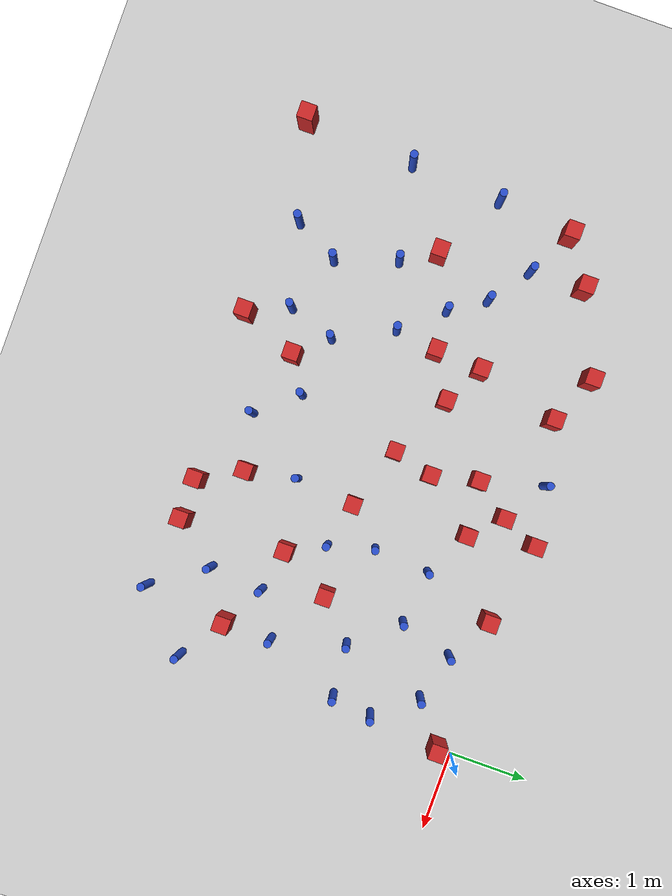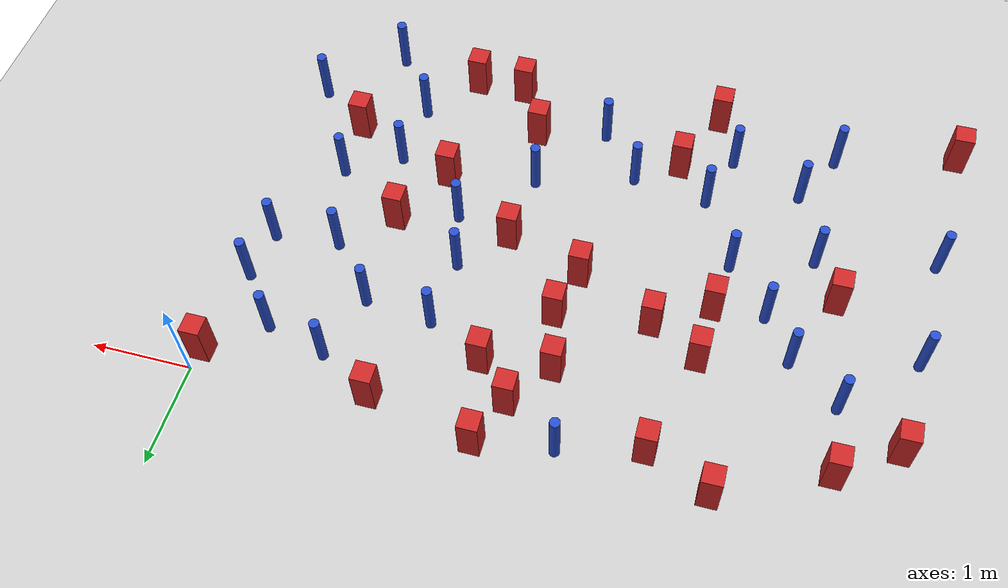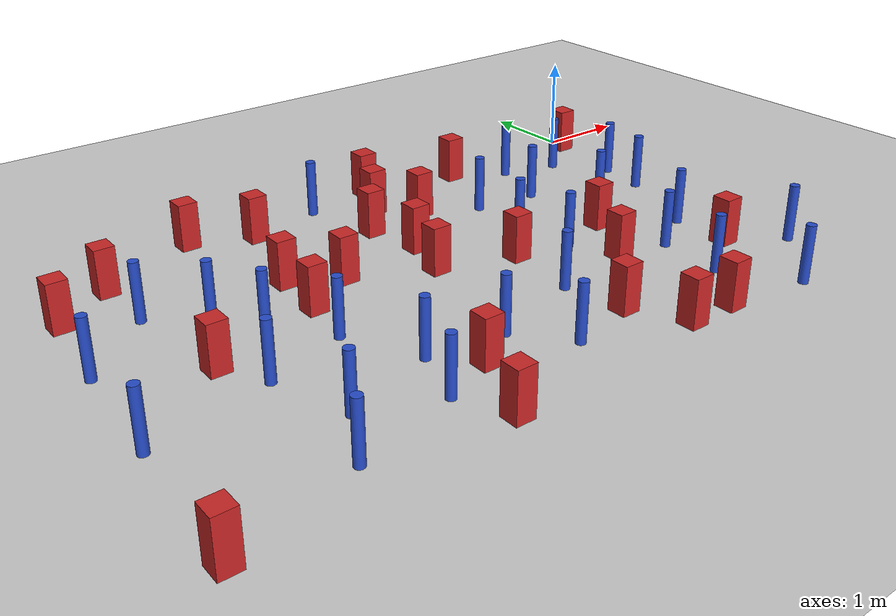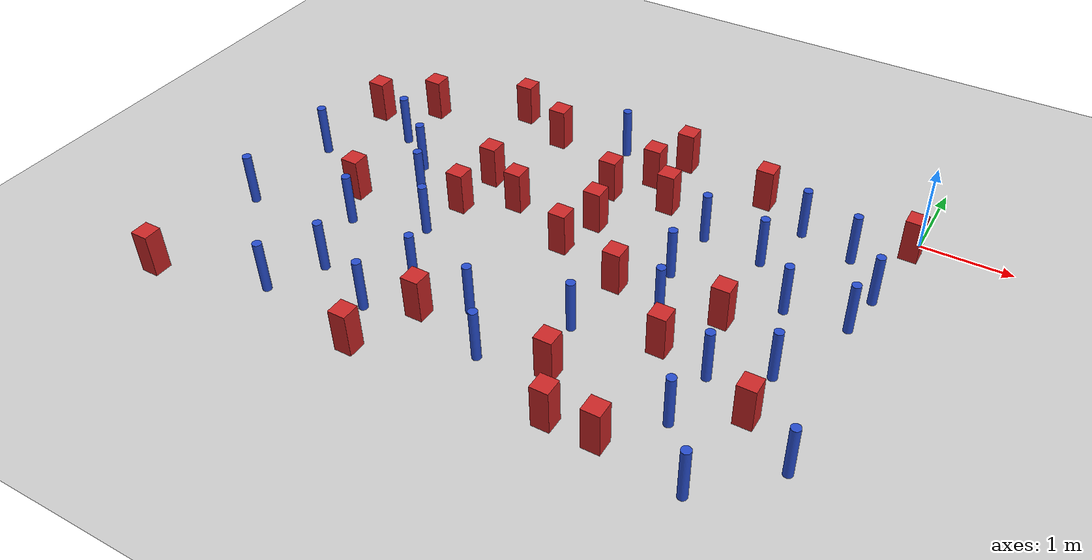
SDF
<sdf version="1.6">
 <world name="default">
  <model name="ground_plane">
   <static>1</static>
   <link name="link">
    <collision name="collision">
     <geometry><plane><normal>0 0 1</normal><size>100 100</size></plane></geometry>
     <surface><friction><ode><mu>100</mu><mu2>50</mu2></ode></friction></surface>
    </collision>
    <visual name="visual">
     <cast_shadows>0</cast_shadows>
     <geometry><plane><normal>0 0 1</normal><size>100 100</size></plane></geometry>
     <material>
      <ambient>1.0 1.0 1.0 1.0</ambient>
      <diffuse>0.8 0.8 0.8 1.0</diffuse>
      <specular>0.01 0.01 0.01 1.000000</specular>
     </material>
    </visual>
   </link>
  </model>
  <model name="NamedLocations">
   <static>true</static>
   <link name="DefaultStart"><pose>8.5 0 0 0 0 3.14</pose></link>
  </model>
  <model name="pole_obstacle3">
   <static>true</static>
   <pose>-0.15549464812 -1.1225898299 -9.47619616065e-06 5.49618799737e-07 2.36310414067e-07 -1.55090534796e-07</pose>
   <link name="link">
    <pose>0 0 0.3 0 -0 0</pose>
    <inertial>
     <mass>1</mass>
     <inertia><ixx>0.145833</ixx><ixy>0</ixy><ixz>0</ixz><iyy>0.145833</iyy><iyz>0</iyz><izz>0.125</izz></inertia>
    </inertial>
    <collision name="collision">
     <geometry><cylinder><radius>0.05</radius><length>.6</length></cylinder></geometry>
    </collision>
    <visual name="visual">
     <geometry><cylinder><radius>0.05</radius><length>.6</length></cylinder></geometry>
     <material>
      <script><name>Gazebo/Blue</name><uri>file://media/materials/scripts/gazebo.material</uri></script>
     </material>
    </visual>
   </link>
  </model>
  <model name="square_post_obstacle4">
   <static>true</static>
   <pose>-6.01725565641 -0.414345068226 -6.11067671241e-07 -5.50515727128e-06 -8.79689657224e-07 2.37013304536e-05</pose>
   <link name="link">
    <pose>0 0 0.25 0 -0 0</pose>
    <inertial>
     <mass>100</mass>
     <inertia>
      <ixx>0.166667</ixx>
      <ixy>0</ixy>
      <ixz>0</ixz>
      <iyy>0.166667</iyy>
      <iyz>0</iyz>
      <izz>0.166667</izz>
     </inertia>
    </inertial>
    <collision name="collision"><geometry><box><size>.2 .2 .5</size></box></geometry></collision>
    <visual name="visual">
     <geometry><box><size>.2 .2 .5</size></box></geometry>
     <material>
      <script><name>Gazebo/Red</name><uri>file://media/materials/scripts/gazebo.material</uri></script>
     </material>
    </visual>
   </link>
  </model>
  <model name="square_post_obstacle6">
   <static>true</static>
   <pose>-2.53700611456 -2.19720525429 -6.11067671241e-07 -5.50515727128e-06 -8.79689657224e-07 2.37013304536e-05</pose>
   <link name="link">
    <pose>0 0 0.25 0 -0 0</pose>
    <inertial>
     <mass>100</mass>
     <inertia>
      <ixx>0.166667</ixx>
      <ixy>0</ixy>
      <ixz>0</ixz>
      <iyy>0.166667</iyy>
      <iyz>0</iyz>
      <izz>0.166667</izz>
     </inertia>
    </inertial>
    <collision name="collision"><geometry><box><size>.2 .2 .5</size></box></geometry></collision>
    <visual name="visual">
     <geometry><box><size>.2 .2 .5</size></box></geometry>
     <material>
      <script><name>Gazebo/Red</name><uri>file://media/materials/scripts/gazebo.material</uri></script>
     </material>
    </visual>
   </link>
  </model>
  <model name="square_post_obstacle11">
   <static>true</static>
   <pose>-2.65082815415 -0.750428980162 -6.11067671241e-07 -5.50515727128e-06 -8.79689657224e-07 2.37013304536e-05</pose>
   <link name="link">
    <pose>0 0 0.25 0 -0 0</pose>
    <inertial>
     <mass>100</mass>
     <inertia>
      <ixx>0.166667</ixx>
      <ixy>0</ixy>
      <ixz>0</ixz>
      <iyy>0.166667</iyy>
      <iyz>0</iyz>
      <izz>0.166667</izz>
     </inertia>
    </inertial>
    <collision name="collision"><geometry><box><size>.2 .2 .5</size></box></geometry></collision>
    <visual name="visual">
     <geometry><box><size>.2 .2 .5</size></box></geometry>
     <material>
      <script><name>Gazebo/Red</name><uri>file://media/materials/scripts/gazebo.material</uri></script>
     </material>
    </visual>
   </link>
  </model>
  <model name="square_post_obstacle12">
   <static>true</static>
   <pose>-2.48388535579 -3.58912054183 -6.11067671241e-07 -5.50515727128e-06 -8.79689657224e-07 2.37013304536e-05</pose>
   <link name="link">
    <pose>0 0 0.25 0 -0 0</pose>
    <inertial>
     <mass>100</mass>
     <inertia>
      <ixx>0.166667</ixx>
      <ixy>0</ixy>
      <ixz>0</ixz>
      <iyy>0.166667</iyy>
      <iyz>0</iyz>
      <izz>0.166667</izz>
     </inertia>
    </inertial>
    <collision name="collision"><geometry><box><size>.2 .2 .5</size></box></geometry></collision>
    <visual name="visual">
     <geometry><box><size>.2 .2 .5</size></box></geometry>
     <material>
      <script><name>Gazebo/Red</name><uri>file://media/materials/scripts/gazebo.material</uri></script>
     </material>
    </visual>
   </link>
  </model>
  <model name="pole_obstacle9">
   <static>true</static>
   <pose>-2.60821976817 -2.95990756869 -9.47619616065e-06 5.49618799737e-07 2.36310414051e-07 -1.55090534807e-07</pose>
   <link name="link">
    <pose>0 0 0.3 0 -0 0</pose>
    <inertial>
     <mass>1</mass>
     <inertia><ixx>0.145833</ixx><ixy>0</ixy><ixz>0</ixz><iyy>0.145833</iyy><iyz>0</iyz><izz>0.125</izz></inertia>
    </inertial>
    <collision name="collision">
     <geometry><cylinder><radius>0.05</radius><length>.6</length></cylinder></geometry>
    </collision>
    <visual name="visual">
     <geometry><cylinder><radius>0.05</radius><length>.6</length></cylinder></geometry>
     <material>
      <script><name>Gazebo/Blue</name><uri>file://media/materials/scripts/gazebo.material</uri></script>
     </material>
    </visual>
   </link>
  </model>
  <model name="pole_obstacle11">
   <static>true</static>
   <pose>-3.18876839636 -3.75957769436 -9.47619616065e-06 5.49618799737e-07 2.36310414051e-07 -1.55090534807e-07</pose>
   <link name="link">
    <pose>0 0 0.3 0 -0 0</pose>
    <inertial>
     <mass>1</mass>
     <inertia><ixx>0.145833</ixx><ixy>0</ixy><ixz>0</ixz><iyy>0.145833</iyy><iyz>0</iyz><izz>0.125</izz></inertia>
    </inertial>
    <collision name="collision">
     <geometry><cylinder><radius>0.05</radius><length>.6</length></cylinder></geometry>
    </collision>
    <visual name="visual">
     <geometry><cylinder><radius>0.05</radius><length>.6</length></cylinder></geometry>
     <material>
      <script><name>Gazebo/Blue</name><uri>file://media/materials/scripts/gazebo.material</uri></script>
     </material>
    </visual>
   </link>
  </model>
  <model name="pole_obstacle16">
   <static>true</static>
   <pose>-0.883943718322 -1.69384752411 -9.47619616065e-06 5.49618799738e-07 2.36310414061e-07 -1.55090534801e-07</pose>
   <link name="link">
    <pose>0 0 0.3 0 -0 0</pose>
    <inertial>
     <mass>1</mass>
     <inertia><ixx>0.145833</ixx><ixy>0</ixy><ixz>0</ixz><iyy>0.145833</iyy><iyz>0</iyz><izz>0.125</izz></inertia>
    </inertial>
    <collision name="collision">
     <geometry><cylinder><radius>0.05</radius><length>.6</length></cylinder></geometry>
    </collision>
    <visual name="visual">
     <geometry><cylinder><radius>0.05</radius><length>.6</length></cylinder></geometry>
     <material>
      <script><name>Gazebo/Blue</name><uri>file://media/materials/scripts/gazebo.material</uri></script>
     </material>
    </visual>
   </link>
  </model>
  <model name="pole_obstacle26">
   <static>true</static>
   <pose>-1.1735871492 -0.448895654991 -9.47619616065e-06 5.49618799737e-07 2.36310414064e-07 -1.55090534799e-07</pose>
   <link name="link">
    <pose>0 0 0.3 0 -0 0</pose>
    <inertial>
     <mass>1</mass>
     <inertia><ixx>0.145833</ixx><ixy>0</ixy><ixz>0</ixz><iyy>0.145833</iyy><iyz>0</iyz><izz>0.125</izz></inertia>
    </inertial>
    <collision name="collision">
     <geometry><cylinder><radius>0.05</radius><length>.6</length></cylinder></geometry>
    </collision>
    <visual name="visual">
     <geometry><cylinder><radius>0.05</radius><length>.6</length></cylinder></geometry>
     <material>
      <script><name>Gazebo/Blue</name><uri>file://media/materials/scripts/gazebo.material</uri></script>
     </material>
    </visual>
   </link>
  </model>
  <model name="pole_obstacle32">
   <static>true</static>
   <pose>-0.0679648866142 -3.59554564713 -9.47619616065e-06 5.49618799737e-07 2.36310414062e-07 -1.55090534799e-07</pose>
   <link name="link">
    <pose>0 0 0.3 0 -0 0</pose>
    <inertial>
     <mass>1</mass>
     <inertia><ixx>0.145833</ixx><ixy>0</ixy><ixz>0</ixz><iyy>0.145833</iyy><iyz>0</iyz><izz>0.125</izz></inertia>
    </inertial>
    <collision name="collision">
     <geometry><cylinder><radius>0.05</radius><length>.6</length></cylinder></geometry>
    </collision>
    <visual name="visual">
     <geometry><cylinder><radius>0.05</radius><length>.6</length></cylinder></geometry>
     <material>
      <script><name>Gazebo/Blue</name><uri>file://media/materials/scripts/gazebo.material</uri></script>
     </material>
    </visual>
   </link>
  </model>
  <model name="pole_obstacle37">
   <static>true</static>
   <pose>-0.751585349839 -4.26400418196 -9.47619616065e-06 5.49618799737e-07 2.36310414065e-07 -1.55090534796e-07</pose>
   <link name="link">
    <pose>0 0 0.3 0 -0 0</pose>
    <inertial>
     <mass>1</mass>
     <inertia><ixx>0.145833</ixx><ixy>0</ixy><ixz>0</ixz><iyy>0.145833</iyy><iyz>0</iyz><izz>0.125</izz></inertia>
    </inertial>
    <collision name="collision">
     <geometry><cylinder><radius>0.05</radius><length>.6</length></cylinder></geometry>
    </collision>
    <visual name="visual">
     <geometry><cylinder><radius>0.05</radius><length>.6</length></cylinder></geometry>
     <material>
      <script><name>Gazebo/Blue</name><uri>file://media/materials/scripts/gazebo.material</uri></script>
     </material>
    </visual>
   </link>
  </model>
  <model name="pole_obstacle41">
   <static>true</static>
   <pose>-4.75455141034 -2.41910875426 -9.47619616065e-06 5.49618799738e-07 2.36310414051e-07 -1.55090534805e-07</pose>
   <link name="link">
    <pose>0 0 0.3 0 -0 0</pose>
    <inertial>
     <mass>1</mass>
     <inertia><ixx>0.145833</ixx><ixy>0</ixy><ixz>0</ixz><iyy>0.145833</iyy><iyz>0</iyz><izz>0.125</izz></inertia>
    </inertial>
    <collision name="collision">
     <geometry><cylinder><radius>0.05</radius><length>.6</length></cylinder></geometry>
    </collision>
    <visual name="visual">
     <geometry><cylinder><radius>0.05</radius><length>.6</length></cylinder></geometry>
     <material>
      <script><name>Gazebo/Blue</name><uri>file://media/materials/scripts/gazebo.material</uri></script>
     </material>
    </visual>
   </link>
  </model>
  <model name="pole_obstacle42">
   <static>true</static>
   <pose>-5.57264430851 -2.67848662907 -9.47619616065e-06 5.49618799738e-07 2.36310414051e-07 -1.55090534805e-07</pose>
   <link name="link">
    <pose>0 0 0.3 0 -0 0</pose>
    <inertial>
     <mass>1</mass>
     <inertia><ixx>0.145833</ixx><ixy>0</ixy><ixz>0</ixz><iyy>0.145833</iyy><iyz>0</iyz><izz>0.125</izz></inertia>
    </inertial>
    <collision name="collision">
     <geometry><cylinder><radius>0.05</radius><length>.6</length></cylinder></geometry>
    </collision>
    <visual name="visual">
     <geometry><cylinder><radius>0.05</radius><length>.6</length></cylinder></geometry>
     <material>
      <script><name>Gazebo/Blue</name><uri>file://media/materials/scripts/gazebo.material</uri></script>
     </material>
    </visual>
   </link>
  </model>
  <model name="pole_obstacle45">
   <static>true</static>
   <pose>-4.38309300057 -3.14928430452 -9.47619616065e-06 5.49618799738e-07 2.36310414051e-07 -1.55090534805e-07</pose>
   <link name="link">
    <pose>0 0 0.3 0 -0 0</pose>
    <inertial>
     <mass>1</mass>
     <inertia><ixx>0.145833</ixx><ixy>0</ixy><ixz>0</ixz><iyy>0.145833</iyy><iyz>0</iyz><izz>0.125</izz></inertia>
    </inertial>
    <collision name="collision">
     <geometry><cylinder><radius>0.05</radius><length>.6</length></cylinder></geometry>
    </collision>
    <visual name="visual">
     <geometry><cylinder><radius>0.05</radius><length>.6</length></cylinder></geometry>
     <material>
      <script><name>Gazebo/Blue</name><uri>file://media/materials/scripts/gazebo.material</uri></script>
     </material>
    </visual>
   </link>
  </model>
  <model name="pole_obstacle49">
   <static>true</static>
   <pose>-4.57653261212 -3.73852436423 -9.47619616065e-06 5.49618799738e-07 2.36310414051e-07 -1.55090534805e-07</pose>
   <link name="link">
    <pose>0 0 0.3 0 -0 0</pose>
    <inertial>
     <mass>1</mass>
     <inertia><ixx>0.145833</ixx><ixy>0</ixy><ixz>0</ixz><iyy>0.145833</iyy><iyz>0</iyz><izz>0.125</izz></inertia>
    </inertial>
    <collision name="collision">
     <geometry><cylinder><radius>0.05</radius><length>.6</length></cylinder></geometry>
    </collision>
    <visual name="visual">
     <geometry><cylinder><radius>0.05</radius><length>.6</length></cylinder></geometry>
     <material>
      <script><name>Gazebo/Blue</name><uri>file://media/materials/scripts/gazebo.material</uri></script>
     </material>
    </visual>
   </link>
  </model>
  <model name="square_post_obstacle50">
   <static>true</static>
   <pose>-4.98031181618 0.045488346718 -6.11067671241e-07 -5.50515727128e-06 -8.79689657224e-07 2.37013304536e-05</pose>
   <link name="link">
    <pose>0 0 0.25 0 -0 0</pose>
    <inertial>
     <mass>100</mass>
     <inertia>
      <ixx>0.166667</ixx>
      <ixy>0</ixy>
      <ixz>0</ixz>
      <iyy>0.166667</iyy>
      <iyz>0</iyz>
      <izz>0.166667</izz>
     </inertia>
    </inertial>
    <collision name="collision"><geometry><box><size>.2 .2 .5</size></box></geometry></collision>
    <visual name="visual">
     <geometry><box><size>.2 .2 .5</size></box></geometry>
     <material>
      <script><name>Gazebo/Red</name><uri>file://media/materials/scripts/gazebo.material</uri></script>
     </material>
    </visual>
   </link>
  </model>
  <model name="pole_obstacle51">
   <static>true</static>
   <pose>-6.75865745815 -2.92584401768 -9.47619616065e-06 5.49618799738e-07 2.36310414051e-07 -1.55090534805e-07</pose>
   <link name="link">
    <pose>0 0 0.3 0 -0 0</pose>
    <inertial>
     <mass>1</mass>
     <inertia><ixx>0.145833</ixx><ixy>0</ixy><ixz>0</ixz><iyy>0.145833</iyy><iyz>0</iyz><izz>0.125</izz></inertia>
    </inertial>
    <collision name="collision">
     <geometry><cylinder><radius>0.05</radius><length>.6</length></cylinder></geometry>
    </collision>
    <visual name="visual">
     <geometry><cylinder><radius>0.05</radius><length>.6</length></cylinder></geometry>
     <material>
      <script><name>Gazebo/Blue</name><uri>file://media/materials/scripts/gazebo.material</uri></script>
     </material>
    </visual>
   </link>
  </model>
  <model name="square_post_obstacle59">
   <static>true</static>
   <pose>-4.67248299402 -1.87569988797 -6.11067671241e-07 -5.50515727128e-06 -8.79689657224e-07 2.37013304536e-05</pose>
   <link name="link">
    <pose>0 0 0.25 0 -0 0</pose>
    <inertial>
     <mass>100</mass>
     <inertia>
      <ixx>0.166667</ixx>
      <ixy>0</ixy>
      <ixz>0</ixz>
      <iyy>0.166667</iyy>
      <iyz>0</iyz>
      <izz>0.166667</izz>
     </inertia>
    </inertial>
    <collision name="collision"><geometry><box><size>.2 .2 .5</size></box></geometry></collision>
    <visual name="visual">
     <geometry><box><size>.2 .2 .5</size></box></geometry>
     <material>
      <script><name>Gazebo/Red</name><uri>file://media/materials/scripts/gazebo.material</uri></script>
     </material>
    </visual>
   </link>
  </model>
  <model name="square_post_obstacle60">
   <static>true</static>
   <pose>-0.627127308561 -3.21232594551 -6.11067671241e-07 -5.50515727128e-06 -8.79689657224e-07 2.37013304536e-05</pose>
   <link name="link">
    <pose>0 0 0.25 0 -0 0</pose>
    <inertial>
     <mass>100</mass>
     <inertia>
      <ixx>0.166667</ixx>
      <ixy>0</ixy>
      <ixz>0</ixz>
      <iyy>0.166667</iyy>
      <iyz>0</iyz>
      <izz>0.166667</izz>
     </inertia>
    </inertial>
    <collision name="collision"><geometry><box><size>.2 .2 .5</size></box></geometry></collision>
    <visual name="visual">
     <geometry><box><size>.2 .2 .5</size></box></geometry>
     <material>
      <script><name>Gazebo/Red</name><uri>file://media/materials/scripts/gazebo.material</uri></script>
     </material>
    </visual>
   </link>
  </model>
  <model name="square_post_obstacle70">
   <static>true</static>
   <pose>-3.33537686443 -0.835675595506 -6.11067671241e-07 -5.50515727128e-06 -8.79689657224e-07 2.37013304536e-05</pose>
   <link name="link">
    <pose>0 0 0.25 0 -0 0</pose>
    <inertial>
     <mass>100</mass>
     <inertia>
      <ixx>0.166667</ixx>
      <ixy>0</ixy>
      <ixz>0</ixz>
      <iyy>0.166667</iyy>
      <iyz>0</iyz>
      <izz>0.166667</izz>
     </inertia>
    </inertial>
    <collision name="collision"><geometry><box><size>.2 .2 .5</size></box></geometry></collision>
    <visual name="visual">
     <geometry><box><size>.2 .2 .5</size></box></geometry>
     <material>
      <script><name>Gazebo/Red</name><uri>file://media/materials/scripts/gazebo.material</uri></script>
     </material>
    </visual>
   </link>
  </model>
  <model name="pole_obstacle69">
   <static>true</static>
   <pose>-3.55504314855 -0.0357356457118 -9.47619616065e-06 5.49618799738e-07 2.36310414077e-07 -1.55090534792e-07</pose>
   <link name="link">
    <pose>0 0 0.3 0 -0 0</pose>
    <inertial>
     <mass>1</mass>
     <inertia><ixx>0.145833</ixx><ixy>0</ixy><ixz>0</ixz><iyy>0.145833</iyy><iyz>0</iyz><izz>0.125</izz></inertia>
    </inertial>
    <collision name="collision">
     <geometry><cylinder><radius>0.05</radius><length>.6</length></cylinder></geometry>
    </collision>
    <visual name="visual">
     <geometry><cylinder><radius>0.05</radius><length>.6</length></cylinder></geometry>
     <material>
      <script><name>Gazebo/Blue</name><uri>file://media/materials/scripts/gazebo.material</uri></script>
     </material>
    </visual>
   </link>
  </model>
  <model name="pole_obstacle94">
   <static>true</static>
   <pose>-5.48154970537 -1.47457390394 -9.47619616065e-06 5.49618799738e-07 2.36310414071e-07 -1.55090534796e-07</pose>
   <link name="link">
    <pose>0 0 0.3 0 -0 0</pose>
    <inertial>
     <mass>1</mass>
     <inertia><ixx>0.145833</ixx><ixy>0</ixy><ixz>0</ixz><iyy>0.145833</iyy><iyz>0</iyz><izz>0.125</izz></inertia>
    </inertial>
    <collision name="collision">
     <geometry><cylinder><radius>0.05</radius><length>.6</length></cylinder></geometry>
    </collision>
    <visual name="visual">
     <geometry><cylinder><radius>0.05</radius><length>.6</length></cylinder></geometry>
     <material>
      <script><name>Gazebo/Blue</name><uri>file://media/materials/scripts/gazebo.material</uri></script>
     </material>
    </visual>
   </link>
  </model>
  <model name="square_post_obstacle83">
   <static>true</static>
   <pose>-1.74344827752 -0.135848268966 -6.11067671241e-07 -5.50515727128e-06 -8.79689657224e-07 2.37013304536e-05</pose>
   <link name="link">
    <pose>0 0 0.25 0 -0 0</pose>
    <inertial>
     <mass>100</mass>
     <inertia>
      <ixx>0.166667</ixx>
      <ixy>0</ixy>
      <ixz>0</ixz>
      <iyy>0.166667</iyy>
      <iyz>0</iyz>
      <izz>0.166667</izz>
     </inertia>
    </inertial>
    <collision name="collision"><geometry><box><size>.2 .2 .5</size></box></geometry></collision>
    <visual name="visual">
     <geometry><box><size>.2 .2 .5</size></box></geometry>
     <material>
      <script><name>Gazebo/Red</name><uri>file://media/materials/scripts/gazebo.material</uri></script>
     </material>
    </visual>
   </link>
  </model>
  <model name="square_post_obstacle85">
   <static>true</static>
   <pose>-4.35220517667 -0.224747397808 -6.11067671241e-07 -5.50515727128e-06 -8.79689657224e-07 2.37013304536e-05</pose>
   <link name="link">
    <pose>0 0 0.25 0 -0 0</pose>
    <inertial>
     <mass>100</mass>
     <inertia>
      <ixx>0.166667</ixx>
      <ixy>0</ixy>
      <ixz>0</ixz>
      <iyy>0.166667</iyy>
      <iyz>0</iyz>
      <izz>0.166667</izz>
     </inertia>
    </inertial>
    <collision name="collision"><geometry><box><size>.2 .2 .5</size></box></geometry></collision>
    <visual name="visual">
     <geometry><box><size>.2 .2 .5</size></box></geometry>
     <material>
      <script><name>Gazebo/Red</name><uri>file://media/materials/scripts/gazebo.material</uri></script>
     </material>
    </visual>
   </link>
  </model>
  <model name="pole_obstacle99">
   <static>true</static>
   <pose>-2.11475759452 -1.75734526215 -9.47619616065e-06 5.49618799737e-07 2.36310414072e-07 -1.55090534793e-07</pose>
   <link name="link">
    <pose>0 0 0.3 0 -0 0</pose>
    <inertial>
     <mass>1</mass>
     <inertia><ixx>0.145833</ixx><ixy>0</ixy><ixz>0</ixz><iyy>0.145833</iyy><iyz>0</iyz><izz>0.125</izz></inertia>
    </inertial>
    <collision name="collision">
     <geometry><cylinder><radius>0.05</radius><length>.6</length></cylinder></geometry>
    </collision>
    <visual name="visual">
     <geometry><cylinder><radius>0.05</radius><length>.6</length></cylinder></geometry>
     <material>
      <script><name>Gazebo/Blue</name><uri>file://media/materials/scripts/gazebo.material</uri></script>
     </material>
    </visual>
   </link>
  </model>
  <model name="square_post_obstacle89">
   <static>true</static>
   <pose>-4.03870317847 -3.52783765517 -6.11067671241e-07 -5.50515727128e-06 -8.79689657224e-07 2.37013304536e-05</pose>
   <link name="link">
    <pose>0 0 0.25 0 -0 0</pose>
    <inertial>
     <mass>100</mass>
     <inertia>
      <ixx>0.166667</ixx>
      <ixy>0</ixy>
      <ixz>0</ixz>
      <iyy>0.166667</iyy>
      <iyz>0</iyz>
      <izz>0.166667</izz>
     </inertia>
    </inertial>
    <collision name="collision"><geometry><box><size>.2 .2 .5</size></box></geometry></collision>
    <visual name="visual">
     <geometry><box><size>.2 .2 .5</size></box></geometry>
     <material>
      <script><name>Gazebo/Red</name><uri>file://media/materials/scripts/gazebo.material</uri></script>
     </material>
    </visual>
   </link>
  </model>
  <model name="pole_obstacle104">
   <static>true</static>
   <pose>-1.37579868778 -1.12550468454 -9.47619616065e-06 5.49618799737e-07 2.36310414065e-07 -1.55090534798e-07</pose>
   <link name="link">
    <pose>0 0 0.3 0 -0 0</pose>
    <inertial>
     <mass>1</mass>
     <inertia><ixx>0.145833</ixx><ixy>0</ixy><ixz>0</ixz><iyy>0.145833</iyy><iyz>0</iyz><izz>0.125</izz></inertia>
    </inertial>
    <collision name="collision">
     <geometry><cylinder><radius>0.05</radius><length>.6</length></cylinder></geometry>
    </collision>
    <visual name="visual">
     <geometry><cylinder><radius>0.05</radius><length>.6</length></cylinder></geometry>
     <material>
      <script><name>Gazebo/Blue</name><uri>file://media/materials/scripts/gazebo.material</uri></script>
     </material>
    </visual>
   </link>
  </model>
  <model name="pole_obstacle116">
   <static>true</static>
   <pose>-1.1635548479 -2.91327949173 -9.47619616065e-06 5.49618799737e-07 2.36310414062e-07 -1.55090534798e-07</pose>
   <link name="link">
    <pose>0 0 0.3 0 -0 0</pose>
    <inertial>
     <mass>1</mass>
     <inertia><ixx>0.145833</ixx><ixy>0</ixy><ixz>0</ixz><iyy>0.145833</iyy><iyz>0</iyz><izz>0.125</izz></inertia>
    </inertial>
    <collision name="collision">
     <geometry><cylinder><radius>0.05</radius><length>.6</length></cylinder></geometry>
    </collision>
    <visual name="visual">
     <geometry><cylinder><radius>0.05</radius><length>.6</length></cylinder></geometry>
     <material>
      <script><name>Gazebo/Blue</name><uri>file://media/materials/scripts/gazebo.material</uri></script>
     </material>
    </visual>
   </link>
  </model>
  <model name="square_post_obstacle108">
   <static>true</static>
   <pose>-1.66970450592 -4.1324618094 -6.11067671241e-07 -5.50515727128e-06 -8.79689657224e-07 2.37013304536e-05</pose>
   <link name="link">
    <pose>0 0 0.25 0 -0 0</pose>
    <inertial>
     <mass>100</mass>
     <inertia>
      <ixx>0.166667</ixx>
      <ixy>0</ixy>
      <ixz>0</ixz>
      <iyy>0.166667</iyy>
      <iyz>0</iyz>
      <izz>0.166667</izz>
     </inertia>
    </inertial>
    <collision name="collision"><geometry><box><size>.2 .2 .5</size></box></geometry></collision>
    <visual name="visual">
     <geometry><box><size>.2 .2 .5</size></box></geometry>
     <material>
      <script><name>Gazebo/Red</name><uri>file://media/materials/scripts/gazebo.material</uri></script>
     </material>
    </visual>
   </link>
  </model>
  <model name="pole_obstacle121">
   <static>true</static>
   <pose>-5.31171345723 -3.45143728901 -9.47619616065e-06 5.49618799738e-07 2.36310414051e-07 -1.55090534805e-07</pose>
   <link name="link">
    <pose>0 0 0.3 0 -0 0</pose>
    <inertial>
     <mass>1</mass>
     <inertia><ixx>0.145833</ixx><ixy>0</ixy><ixz>0</ixz><iyy>0.145833</iyy><iyz>0</iyz><izz>0.125</izz></inertia>
    </inertial>
    <collision name="collision">
     <geometry><cylinder><radius>0.05</radius><length>.6</length></cylinder></geometry>
    </collision>
    <visual name="visual">
     <geometry><cylinder><radius>0.05</radius><length>.6</length></cylinder></geometry>
     <material>
      <script><name>Gazebo/Blue</name><uri>file://media/materials/scripts/gazebo.material</uri></script>
     </material>
    </visual>
   </link>
  </model>
  <model name="pole_obstacle123">
   <static>true</static>
   <pose>-1.95697928194 -2.32937170766 -9.47619616065e-06 5.49618799737e-07 2.36310414076e-07 -1.55090534791e-07</pose>
   <link name="link">
    <pose>0 0 0.3 0 -0 0</pose>
    <inertial>
     <mass>1</mass>
     <inertia><ixx>0.145833</ixx><ixy>0</ixy><ixz>0</ixz><iyy>0.145833</iyy><iyz>0</iyz><izz>0.125</izz></inertia>
    </inertial>
    <collision name="collision">
     <geometry><cylinder><radius>0.05</radius><length>.6</length></cylinder></geometry>
    </collision>
    <visual name="visual">
     <geometry><cylinder><radius>0.05</radius><length>.6</length></cylinder></geometry>
     <material>
      <script><name>Gazebo/Blue</name><uri>file://media/materials/scripts/gazebo.material</uri></script>
     </material>
    </visual>
   </link>
  </model>
  <model name="pole_obstacle125">
   <static>true</static>
   <pose>-5.18692185516 -1.91348864505 -9.47619616065e-06 5.49618799738e-07 2.36310414071e-07 -1.55090534796e-07</pose>
   <link name="link">
    <pose>0 0 0.3 0 -0 0</pose>
    <inertial>
     <mass>1</mass>
     <inertia><ixx>0.145833</ixx><ixy>0</ixy><ixz>0</ixz><iyy>0.145833</iyy><iyz>0</iyz><izz>0.125</izz></inertia>
    </inertial>
    <collision name="collision">
     <geometry><cylinder><radius>0.05</radius><length>.6</length></cylinder></geometry>
    </collision>
    <visual name="visual">
     <geometry><cylinder><radius>0.05</radius><length>.6</length></cylinder></geometry>
     <material>
      <script><name>Gazebo/Blue</name><uri>file://media/materials/scripts/gazebo.material</uri></script>
     </material>
    </visual>
   </link>
  </model>
  <model name="pole_obstacle135">
   <static>true</static>
   <pose>-0.227210654788 -1.6357667809 -9.47619616065e-06 5.49618799738e-07 2.36310414065e-07 -1.55090534798e-07</pose>
   <link name="link">
    <pose>0 0 0.3 0 -0 0</pose>
    <inertial>
     <mass>1</mass>
     <inertia><ixx>0.145833</ixx><ixy>0</ixy><ixz>0</ixz><iyy>0.145833</iyy><iyz>0</iyz><izz>0.125</izz></inertia>
    </inertial>
    <collision name="collision">
     <geometry><cylinder><radius>0.05</radius><length>.6</length></cylinder></geometry>
    </collision>
    <visual name="visual">
     <geometry><cylinder><radius>0.05</radius><length>.6</length></cylinder></geometry>
     <material>
      <script><name>Gazebo/Blue</name><uri>file://media/materials/scripts/gazebo.material</uri></script>
     </material>
    </visual>
   </link>
  </model>
  <model name="square_post_obstacle116">
   <static>true</static>
   <pose>-4.13005670466 -1.54938681554 -6.11067671241e-07 -5.50515727128e-06 -8.79689657224e-07 2.37013304536e-05</pose>
   <link name="link">
    <pose>0 0 0.25 0 -0 0</pose>
    <inertial>
     <mass>100</mass>
     <inertia>
      <ixx>0.166667</ixx>
      <ixy>0</ixy>
      <ixz>0</ixz>
      <iyy>0.166667</iyy>
      <iyz>0</iyz>
      <izz>0.166667</izz>
     </inertia>
    </inertial>
    <collision name="collision"><geometry><box><size>.2 .2 .5</size></box></geometry></collision>
    <visual name="visual">
     <geometry><box><size>.2 .2 .5</size></box></geometry>
     <material>
      <script><name>Gazebo/Red</name><uri>file://media/materials/scripts/gazebo.material</uri></script>
     </material>
    </visual>
   </link>
  </model>
  <model name="square_post_obstacle119">
   <static>true</static>
   <pose>-0.0483378642414 -0.210063783202 -6.11067671241e-07 -5.50515727128e-06 -8.79689657224e-07 2.37013304536e-05</pose>
   <link name="link">
    <pose>0 0 0.25 0 -0 0</pose>
    <inertial>
     <mass>100</mass>
     <inertia>
      <ixx>0.166667</ixx>
      <ixy>0</ixy>
      <ixz>0</ixz>
      <iyy>0.166667</iyy>
      <iyz>0</iyz>
      <izz>0.166667</izz>
     </inertia>
    </inertial>
    <collision name="collision"><geometry><box><size>.2 .2 .5</size></box></geometry></collision>
    <visual name="visual">
     <geometry><box><size>.2 .2 .5</size></box></geometry>
     <material>
      <script><name>Gazebo/Red</name><uri>file://media/materials/scripts/gazebo.material</uri></script>
     </material>
    </visual>
   </link>
  </model>
  <model name="square_post_obstacle123">
   <static>true</static>
   <pose>-3.1997612624 -1.41937217034 -6.11067671241e-07 -5.50515727128e-06 -8.79689657224e-07 2.37013304536e-05</pose>
   <link name="link">
    <pose>0 0 0.25 0 -0 0</pose>
    <inertial>
     <mass>100</mass>
     <inertia>
      <ixx>0.166667</ixx>
      <ixy>0</ixy>
      <ixz>0</ixz>
      <iyy>0.166667</iyy>
      <iyz>0</iyz>
      <izz>0.166667</izz>
     </inertia>
    </inertial>
    <collision name="collision"><geometry><box><size>.2 .2 .5</size></box></geometry></collision>
    <visual name="visual">
     <geometry><box><size>.2 .2 .5</size></box></geometry>
     <material>
      <script><name>Gazebo/Red</name><uri>file://media/materials/scripts/gazebo.material</uri></script>
     </material>
    </visual>
   </link>
  </model>
  <model name="pole_obstacle140">
   <static>true</static>
   <pose>-0.624285704263 -2.59994410488 -9.47619616065e-06 5.49618799737e-07 2.36310414066e-07 -1.55090534797e-07</pose>
   <link name="link">
    <pose>0 0 0.3 0 -0 0</pose>
    <inertial>
     <mass>1</mass>
     <inertia><ixx>0.145833</ixx><ixy>0</ixy><ixz>0</ixz><iyy>0.145833</iyy><iyz>0</iyz><izz>0.125</izz></inertia>
    </inertial>
    <collision name="collision">
     <geometry><cylinder><radius>0.05</radius><length>.6</length></cylinder></geometry>
    </collision>
    <visual name="visual">
     <geometry><cylinder><radius>0.05</radius><length>.6</length></cylinder></geometry>
     <material>
      <script><name>Gazebo/Blue</name><uri>file://media/materials/scripts/gazebo.material</uri></script>
     </material>
    </visual>
   </link>
  </model>
  <model name="square_post_obstacle132">
   <static>true</static>
   <pose>-1.36321852122 -2.14388804077 -6.11067671241e-07 -5.50515727128e-06 -8.79689657224e-07 2.37013304536e-05</pose>
   <link name="link">
    <pose>0 0 0.25 0 -0 0</pose>
    <inertial>
     <mass>100</mass>
     <inertia>
      <ixx>0.166667</ixx>
      <ixy>0</ixy>
      <ixz>0</ixz>
      <iyy>0.166667</iyy>
      <iyz>0</iyz>
      <izz>0.166667</izz>
     </inertia>
    </inertial>
    <collision name="collision"><geometry><box><size>.2 .2 .5</size></box></geometry></collision>
    <visual name="visual">
     <geometry><box><size>.2 .2 .5</size></box></geometry>
     <material>
      <script><name>Gazebo/Red</name><uri>file://media/materials/scripts/gazebo.material</uri></script>
     </material>
    </visual>
   </link>
  </model>
  <model name="square_post_obstacle140">
   <static>true</static>
   <pose>-2.8084127421 0.079204917517 -6.11067671241e-07 -5.50515727128e-06 -8.79689657224e-07 2.37013304536e-05</pose>
   <link name="link">
    <pose>0 0 0.25 0 -0 0</pose>
    <inertial>
     <mass>100</mass>
     <inertia>
      <ixx>0.166667</ixx>
      <ixy>0</ixy>
      <ixz>0</ixz>
      <iyy>0.166667</iyy>
      <iyz>0</iyz>
      <izz>0.166667</izz>
     </inertia>
    </inertial>
    <collision name="collision"><geometry><box><size>.2 .2 .5</size></box></geometry></collision>
    <visual name="visual">
     <geometry><box><size>.2 .2 .5</size></box></geometry>
     <material>
      <script><name>Gazebo/Red</name><uri>file://media/materials/scripts/gazebo.material</uri></script>
     </material>
    </visual>
   </link>
  </model>
  <model name="pole_obstacle156">
   <static>true</static>
   <pose>-1.21711625201 -3.59710161756 -9.47619616065e-06 5.49618799737e-07 2.36310414062e-07 -1.55090534798e-07</pose>
   <link name="link">
    <pose>0 0 0.3 0 -0 0</pose>
    <inertial>
     <mass>1</mass>
     <inertia><ixx>0.145833</ixx><ixy>0</ixy><ixz>0</ixz><iyy>0.145833</iyy><iyz>0</iyz><izz>0.125</izz></inertia>
    </inertial>
    <collision name="collision">
     <geometry><cylinder><radius>0.05</radius><length>.6</length></cylinder></geometry>
    </collision>
    <visual name="visual">
     <geometry><cylinder><radius>0.05</radius><length>.6</length></cylinder></geometry>
     <material>
      <script><name>Gazebo/Blue</name><uri>file://media/materials/scripts/gazebo.material</uri></script>
     </material>
    </visual>
   </link>
  </model>
  <model name="square_post_obstacle150">
   <static>true</static>
   <pose>-6.84316545487 -4.33504790667 -6.11067671241e-07 -5.50515727128e-06 -8.79689657224e-07 2.37013304536e-05</pose>
   <link name="link">
    <pose>0 0 0.25 0 -0 0</pose>
    <inertial>
     <mass>100</mass>
     <inertia>
      <ixx>0.166667</ixx>
      <ixy>0</ixy>
      <ixz>0</ixz>
      <iyy>0.166667</iyy>
      <iyz>0</iyz>
      <izz>0.166667</izz>
     </inertia>
    </inertial>
    <collision name="collision"><geometry><box><size>.2 .2 .5</size></box></geometry></collision>
    <visual name="visual">
     <geometry><box><size>.2 .2 .5</size></box></geometry>
     <material>
      <script><name>Gazebo/Red</name><uri>file://media/materials/scripts/gazebo.material</uri></script>
     </material>
    </visual>
   </link>
  </model>
  <model name="pole_obstacle157">
   <static>true</static>
   <pose>-3.60481550329 -3.25830902623 -9.47619616065e-06 5.49618799737e-07 2.36310414067e-07 -1.55090534797e-07</pose>
   <link name="link">
    <pose>0 0 0.3 0 -0 0</pose>
    <inertial>
     <mass>1</mass>
     <inertia><ixx>0.145833</ixx><ixy>0</ixy><ixz>0</ixz><iyy>0.145833</iyy><iyz>0</iyz><izz>0.125</izz></inertia>
    </inertial>
    <collision name="collision">
     <geometry><cylinder><radius>0.05</radius><length>.6</length></cylinder></geometry>
    </collision>
    <visual name="visual">
     <geometry><cylinder><radius>0.05</radius><length>.6</length></cylinder></geometry>
     <material>
      <script><name>Gazebo/Blue</name><uri>file://media/materials/scripts/gazebo.material</uri></script>
     </material>
    </visual>
   </link>
  </model>
  <model name="pole_obstacle159">
   <static>true</static>
   <pose>-5.61219037309 -4.0071550349 -9.47619616065e-06 5.49618799737e-07 2.36310414037e-07 -1.55090534813e-07</pose>
   <link name="link">
    <pose>0 0 0.3 0 -0 0</pose>
    <inertial>
     <mass>1</mass>
     <inertia><ixx>0.145833</ixx><ixy>0</ixy><ixz>0</ixz><iyy>0.145833</iyy><iyz>0</iyz><izz>0.125</izz></inertia>
    </inertial>
    <collision name="collision">
     <geometry><cylinder><radius>0.05</radius><length>.6</length></cylinder></geometry>
    </collision>
    <visual name="visual">
     <geometry><cylinder><radius>0.05</radius><length>.6</length></cylinder></geometry>
     <material>
      <script><name>Gazebo/Blue</name><uri>file://media/materials/scripts/gazebo.material</uri></script>
     </material>
    </visual>
   </link>
  </model>
  <model name="square_post_obstacle155">
   <static>true</static>
   <pose>-3.33115493197 -1.93214846217 -6.11067671241e-07 -5.50515727128e-06 -8.79689657224e-07 2.37013304536e-05</pose>
   <link name="link">
    <pose>0 0 0.25 0 -0 0</pose>
    <inertial>
     <mass>100</mass>
     <inertia>
      <ixx>0.166667</ixx>
      <ixy>0</ixy>
      <ixz>0</ixz>
      <iyy>0.166667</iyy>
      <iyz>0</iyz>
      <izz>0.166667</izz>
     </inertia>
    </inertial>
    <collision name="collision"><geometry><box><size>.2 .2 .5</size></box></geometry></collision>
    <visual name="visual">
     <geometry><box><size>.2 .2 .5</size></box></geometry>
     <material>
      <script><name>Gazebo/Red</name><uri>file://media/materials/scripts/gazebo.material</uri></script>
     </material>
    </visual>
   </link>
  </model>
  <model name="square_post_obstacle157">
   <static>true</static>
   <pose>-4.63492057859 -1.27797186409 -6.11067671241e-07 -5.50515727128e-06 -8.79689657224e-07 2.37013304536e-05</pose>
   <link name="link">
    <pose>0 0 0.25 0 -0 0</pose>
    <inertial>
     <mass>100</mass>
     <inertia>
      <ixx>0.166667</ixx>
      <ixy>0</ixy>
      <ixz>0</ixz>
      <iyy>0.166667</iyy>
      <iyz>0</iyz>
      <izz>0.166667</izz>
     </inertia>
    </inertial>
    <collision name="collision"><geometry><box><size>.2 .2 .5</size></box></geometry></collision>
    <visual name="visual">
     <geometry><box><size>.2 .2 .5</size></box></geometry>
     <material>
      <script><name>Gazebo/Red</name><uri>file://media/materials/scripts/gazebo.material</uri></script>
     </material>
    </visual>
   </link>
  </model>
  <model name="pole_obstacle171">
   <static>true</static>
   <pose>-2.06210693997 -1.04483613318 -9.47619616065e-06 5.49618799738e-07 2.3631041407e-07 -1.55090534797e-07</pose>
   <link name="link">
    <pose>0 0 0.3 0 -0 0</pose>
    <inertial>
     <mass>1</mass>
     <inertia><ixx>0.145833</ixx><ixy>0</ixy><ixz>0</ixz><iyy>0.145833</iyy><iyz>0</iyz><izz>0.125</izz></inertia>
    </inertial>
    <collision name="collision">
     <geometry><cylinder><radius>0.05</radius><length>.6</length></cylinder></geometry>
    </collision>
    <visual name="visual">
     <geometry><cylinder><radius>0.05</radius><length>.6</length></cylinder></geometry>
     <material>
      <script><name>Gazebo/Blue</name><uri>file://media/materials/scripts/gazebo.material</uri></script>
     </material>
    </visual>
   </link>
  </model>
  <model name="pole_obstacle187">
   <static>true</static>
   <pose>-6.68925521037 -1.75601825115 -9.47619616065e-06 5.49618799738e-07 2.36310414071e-07 -1.55090534796e-07</pose>
   <link name="link">
    <pose>0 0 0.3 0 -0 0</pose>
    <inertial>
     <mass>1</mass>
     <inertia><ixx>0.145833</ixx><ixy>0</ixy><ixz>0</ixz><iyy>0.145833</iyy><iyz>0</iyz><izz>0.125</izz></inertia>
    </inertial>
    <collision name="collision">
     <geometry><cylinder><radius>0.05</radius><length>.6</length></cylinder></geometry>
    </collision>
    <visual name="visual">
     <geometry><cylinder><radius>0.05</radius><length>.6</length></cylinder></geometry>
     <material>
      <script><name>Gazebo/Blue</name><uri>file://media/materials/scripts/gazebo.material</uri></script>
     </material>
    </visual>
   </link>
  </model>
  <model name="square_post_obstacle178">
   <static>true</static>
   <pose>-3.00459827663 -0.388806525793 -6.11067671241e-07 -5.50515727128e-06 -8.79689657224e-07 2.37013304536e-05</pose>
   <link name="link">
    <pose>0 0 0.25 0 -0 0</pose>
    <inertial>
     <mass>100</mass>
     <inertia>
      <ixx>0.166667</ixx>
      <ixy>0</ixy>
      <ixz>0</ixz>
      <iyy>0.166667</iyy>
      <iyz>0</iyz>
      <izz>0.166667</izz>
     </inertia>
    </inertial>
    <collision name="collision"><geometry><box><size>.2 .2 .5</size></box></geometry></collision>
    <visual name="visual">
     <geometry><box><size>.2 .2 .5</size></box></geometry>
     <material>
      <script><name>Gazebo/Red</name><uri>file://media/materials/scripts/gazebo.material</uri></script>
     </material>
    </visual>
   </link>
  </model>
  <model name="square_post_obstacle179">
   <static>true</static>
   <pose>-1.71744557483 -2.79550972508 -6.11067671241e-07 -5.50515727128e-06 -8.79689657224e-07 2.37013304536e-05</pose>
   <link name="link">
    <pose>0 0 0.25 0 -0 0</pose>
    <inertial>
     <mass>100</mass>
     <inertia>
      <ixx>0.166667</ixx>
      <ixy>0</ixy>
      <ixz>0</ixz>
      <iyy>0.166667</iyy>
      <iyz>0</iyz>
      <izz>0.166667</izz>
     </inertia>
    </inertial>
    <collision name="collision"><geometry><box><size>.2 .2 .5</size></box></geometry></collision>
    <visual name="visual">
     <geometry><box><size>.2 .2 .5</size></box></geometry>
     <material>
      <script><name>Gazebo/Red</name><uri>file://media/materials/scripts/gazebo.material</uri></script>
     </material>
    </visual>
   </link>
  </model>
  <model name="square_post_obstacle180">
   <static>true</static>
   <pose>-5.82829631438 -2.24376406795 -6.11067671241e-07 -5.50515727128e-06 -8.79689657224e-07 2.37013304536e-05</pose>
   <link name="link">
    <pose>0 0 0.25 0 -0 0</pose>
    <inertial>
     <mass>100</mass>
     <inertia>
      <ixx>0.166667</ixx>
      <ixy>0</ixy>
      <ixz>0</ixz>
      <iyy>0.166667</iyy>
      <iyz>0</iyz>
      <izz>0.166667</izz>
     </inertia>
    </inertial>
    <collision name="collision"><geometry><box><size>.2 .2 .5</size></box></geometry></collision>
    <visual name="visual">
     <geometry><box><size>.2 .2 .5</size></box></geometry>
     <material>
      <script><name>Gazebo/Red</name><uri>file://media/materials/scripts/gazebo.material</uri></script>
     </material>
    </visual>
   </link>
  </model>
  <model name="square_post_obstacle191">
   <static>true</static>
   <pose>-6.58631507473 -0.793808674909 -6.11067671241e-07 -5.50515727128e-06 -8.79689657224e-07 2.37013304536e-05</pose>
   <link name="link">
    <pose>0 0 0.25 0 -0 0</pose>
    <inertial>
     <mass>100</mass>
     <inertia>
      <ixx>0.166667</ixx>
      <ixy>0</ixy>
      <ixz>0</ixz>
      <iyy>0.166667</iyy>
      <iyz>0</iyz>
      <izz>0.166667</izz>
     </inertia>
    </inertial>
    <collision name="collision"><geometry><box><size>.2 .2 .5</size></box></geometry></collision>
    <visual name="visual">
     <geometry><box><size>.2 .2 .5</size></box></geometry>
     <material>
      <script><name>Gazebo/Red</name><uri>file://media/materials/scripts/gazebo.material</uri></script>
     </material>
    </visual>
   </link>
  </model>
  <model name="pole_obstacle204">
   <static>true</static>
   <pose>-0.564202945463 -0.609742809702 -9.47619616065e-06 5.49618799737e-07 2.36310414058e-07 -1.55090534802e-07</pose>
   <link name="link">
    <pose>0 0 0.3 0 -0 0</pose>
    <inertial>
     <mass>1</mass>
     <inertia><ixx>0.145833</ixx><ixy>0</ixy><ixz>0</ixz><iyy>0.145833</iyy><iyz>0</iyz><izz>0.125</izz></inertia>
    </inertial>
    <collision name="collision">
     <geometry><cylinder><radius>0.05</radius><length>.6</length></cylinder></geometry>
    </collision>
    <visual name="visual">
     <geometry><cylinder><radius>0.05</radius><length>.6</length></cylinder></geometry>
     <material>
      <script><name>Gazebo/Blue</name><uri>file://media/materials/scripts/gazebo.material</uri></script>
     </material>
    </visual>
   </link>
  </model>
  <model name="square_post_obstacle214">
   <static>true</static>
   <pose>-4.33819980091 -4.25405164596 -6.11067671241e-07 -5.50515727128e-06 -8.79689657224e-07 2.37013304536e-05</pose>
   <link name="link">
    <pose>0 0 0.25 0 -0 0</pose>
    <inertial>
     <mass>100</mass>
     <inertia>
      <ixx>0.166667</ixx>
      <ixy>0</ixy>
      <ixz>0</ixz>
      <iyy>0.166667</iyy>
      <iyz>0</iyz>
      <izz>0.166667</izz>
     </inertia>
    </inertial>
    <collision name="collision"><geometry><box><size>.2 .2 .5</size></box></geometry></collision>
    <visual name="visual">
     <geometry><box><size>.2 .2 .5</size></box></geometry>
     <material>
      <script><name>Gazebo/Red</name><uri>file://media/materials/scripts/gazebo.material</uri></script>
     </material>
    </visual>
   </link>
  </model>
  <model name="square_post_obstacle222">
   <static>true</static>
   <pose>-2.18741182679 -4.13121887822 -6.11067671241e-07 -5.50515727128e-06 -8.79689657224e-07 2.37013304536e-05</pose>
   <link name="link">
    <pose>0 0 0.25 0 -0 0</pose>
    <inertial>
     <mass>100</mass>
     <inertia>
      <ixx>0.166667</ixx>
      <ixy>0</ixy>
      <ixz>0</ixz>
      <iyy>0.166667</iyy>
      <iyz>0</iyz>
      <izz>0.166667</izz>
     </inertia>
    </inertial>
    <collision name="collision"><geometry><box><size>.2 .2 .5</size></box></geometry></collision>
    <visual name="visual">
     <geometry><box><size>.2 .2 .5</size></box></geometry>
     <material>
      <script><name>Gazebo/Red</name><uri>file://media/materials/scripts/gazebo.material</uri></script>
     </material>
    </visual>
   </link>
  </model>
  <model name="pole_obstacle212">
   <static>true</static>
   <pose>-5.98414543061 -1.10593329823 -9.47619616065e-06 5.49618799738e-07 2.36310414071e-07 -1.55090534796e-07</pose>
   <link name="link">
    <pose>0 0 0.3 0 -0 0</pose>
    <inertial>
     <mass>1</mass>
     <inertia><ixx>0.145833</ixx><ixy>0</ixy><ixz>0</ixz><iyy>0.145833</iyy><iyz>0</iyz><izz>0.125</izz></inertia>
    </inertial>
    <collision name="collision">
     <geometry><cylinder><radius>0.05</radius><length>.6</length></cylinder></geometry>
    </collision>
    <visual name="visual">
     <geometry><cylinder><radius>0.05</radius><length>.6</length></cylinder></geometry>
     <material>
      <script><name>Gazebo/Blue</name><uri>file://media/materials/scripts/gazebo.material</uri></script>
     </material>
    </visual>
   </link>
  </model>
 </world>
</sdf>
